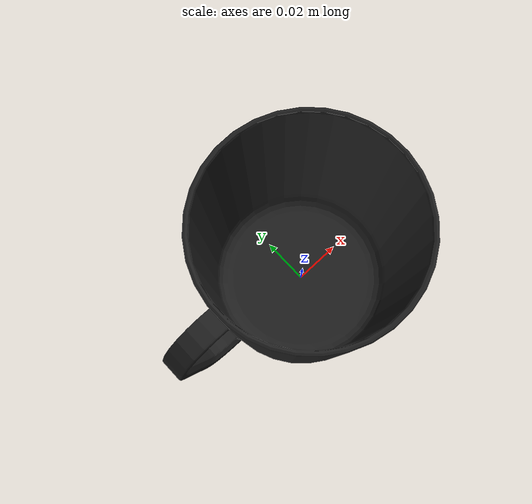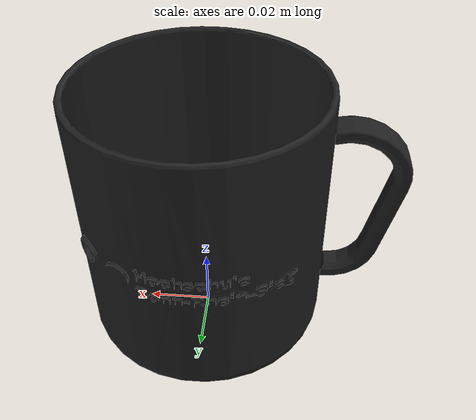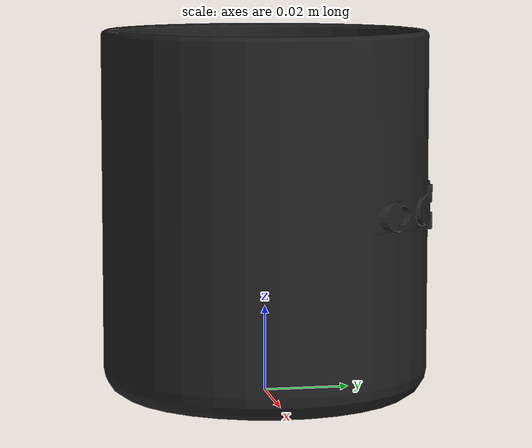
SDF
<?xml version='1.0'?>
<sdf version="1.5">
  <model name="mug"> <!-- Very important to change-->
    <static>false</static>
    <pose>0 0 0 0 0 0</pose> <!-- Translation: X Y Z and Rotation: Roll Pitch Yaw (In Radian)-->
    <link name="body">

    <inertial>
      <mass>0.405</mass>
        <inertia>
        <ixx>1.22e-4</ixx>
        <ixy>-5.2e-8</ixy>
        <ixz>3.51e-9</ixz>
        <iyy>4.29e-6</iyy>
        <iyz>1.39e-5</iyz>
        <izz>1.22e-4</izz>
      </inertia>
    </inertial>

       <collision name="collision"> <!-- You can use mesh like below -->
        <geometry>
          <mesh>
             <uri>/home/sorox23/robotic_ws/master_thesis_ws/src/property_based_tester/environment/models/mug/meshes/mug.stl</uri>
             <scale>0.001 0.001 0.001</scale>
          </mesh>
        </geometry>
      </collision>

      <visual name="visual">
        <geometry>
          <mesh>
             <uri>/home/sorox23/robotic_ws/master_thesis_ws/src/property_based_tester/environment/models/mug/meshes/mug.stl</uri>
             <scale>0.001 0.001 0.001</scale>
          </mesh>
        </geometry>

        <material>
          <script>
             <uri>/home/sorox23/robotic_ws/master_thesis_ws/src/property_based_tester/environment/models/mug/materials/scripts</uri>
             <uri>/home/sorox23/robotic_ws/master_thesis_ws/src/property_based_tester/environment/models/mug/materials/textures</uri>
             <name>Gazebo/FlatBlack</name>
          </script>
        </material>
      </visual>
    </link>
  </model>
</sdf>
